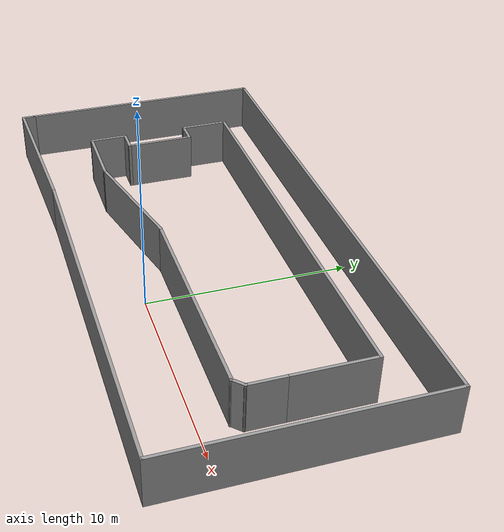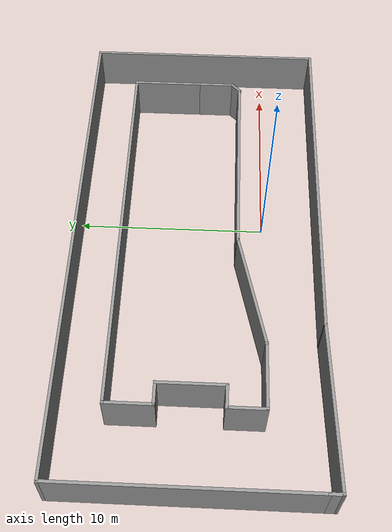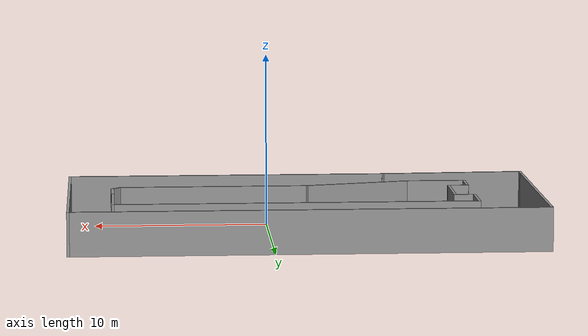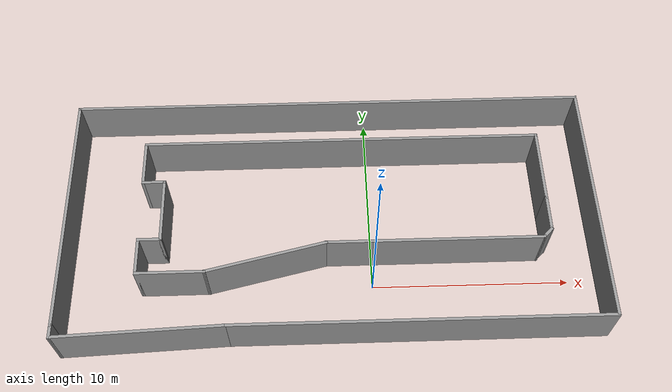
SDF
<?xml version='1.0'?>
<sdf version='1.7'>
  <model name='parking_map1'>
    <pose>-1.95765 3.36047 0 0 -0 0</pose>
    <link name='Wall_10'>
      <collision name='Wall_10_Collision'>
        <geometry>
          <box>
            <size>18.75 0.15 2.5</size>
          </box>
        </geometry>
        <pose>0 0 1.25 0 -0 0</pose>
      </collision>
      <visual name='Wall_10_Visual'>
        <pose>0 0 1.25 0 -0 0</pose>
        <geometry>
          <box>
            <size>18.75 0.15 2.5</size>
          </box>
        </geometry>
        <material>
          <script>
            <uri>file://media/materials/scripts/gazebo.material</uri>
            <name>Gazebo/Grey</name>
          </script>
          <ambient>1 1 1 1</ambient>
        </material>
        <meta>
          <layer>0</layer>
        </meta>
      </visual>
      <pose>4.12655 -6.24845 0 0 -0 0</pose>
    </link>
    <link name='Wall_11'>
      <collision name='Wall_11_Collision'>
        <geometry>
          <box>
            <size>13 0.15 2.5</size>
          </box>
        </geometry>
        <pose>0 0 1.25 0 -0 0</pose>
      </collision>
      <visual name='Wall_11_Visual'>
        <pose>0 0 1.25 0 -0 0</pose>
        <geometry>
          <box>
            <size>13 0.15 2.5</size>
          </box>
        </geometry>
        <material>
          <script>
            <uri>file://media/materials/scripts/gazebo.material</uri>
            <name>Gazebo/Grey</name>
          </script>
          <ambient>1 1 1 1</ambient>
        </material>
        <meta>
          <layer>0</layer>
        </meta>
      </visual>
      <pose>13.4266 0.176556 0 0 -0 1.5708</pose>
    </link>
    <link name='Wall_12'>
      <collision name='Wall_12_Collision'>
        <geometry>
          <box>
            <size>27 0.15 2.5</size>
          </box>
        </geometry>
        <pose>0 0 1.25 0 -0 0</pose>
      </collision>
      <visual name='Wall_12_Visual'>
        <pose>0 0 1.25 0 -0 0</pose>
        <geometry>
          <box>
            <size>27 0.15 2.5</size>
          </box>
        </geometry>
        <material>
          <script>
            <uri>file://media/materials/scripts/gazebo.material</uri>
            <name>Gazebo/Grey</name>
          </script>
          <ambient>1 1 1 1</ambient>
        </material>
        <meta>
          <layer>0</layer>
        </meta>
      </visual>
      <pose>0.001555 6.60156 0 0 -0 3.14159</pose>
    </link>
    <link name='Wall_13'>
      <collision name='Wall_13_Collision'>
        <geometry>
          <box>
            <size>12.75 0.15 2.5</size>
          </box>
        </geometry>
        <pose>0 0 1.25 0 -0 0</pose>
      </collision>
      <visual name='Wall_13_Visual'>
        <pose>0 0 1.25 0 -0 0</pose>
        <geometry>
          <box>
            <size>12.75 0.15 2.5</size>
          </box>
        </geometry>
        <material>
          <script>
            <uri>file://media/materials/scripts/gazebo.material</uri>
            <name>Gazebo/Grey</name>
          </script>
          <ambient>1 1 1 1</ambient>
        </material>
        <meta>
          <layer>0</layer>
        </meta>
      </visual>
      <pose>-13.4234 0.301556 0 0 -0 -1.5708</pose>
    </link>
    <link name='Wall_14'>
      <collision name='Wall_14_Collision'>
        <geometry>
          <box>
            <size>0.75 0.15 2.5</size>
          </box>
        </geometry>
        <pose>0 0 1.25 0 -0 0</pose>
      </collision>
      <visual name='Wall_14_Visual'>
        <pose>0 0 1.25 0 -0 0</pose>
        <geometry>
          <box>
            <size>0.75 0.15 2.5</size>
          </box>
        </geometry>
        <material>
          <script>
            <uri>file://media/materials/scripts/gazebo.material</uri>
            <name>Gazebo/Grey</name>
          </script>
          <ambient>1 1 1 1</ambient>
        </material>
        <meta>
          <layer>0</layer>
        </meta>
      </visual>
      <pose>-13.4234 -6.29845 0 0 -0 -1.5708</pose>
    </link>
    <link name='Wall_15'>
      <collision name='Wall_15_Collision'>
        <geometry>
          <box>
            <size>8.40742 0.15 2.5</size>
          </box>
        </geometry>
        <pose>0 0 1.25 0 -0 0</pose>
      </collision>
      <visual name='Wall_15_Visual'>
        <pose>0 0 1.25 0 -0 0</pose>
        <geometry>
          <box>
            <size>8.40742 0.15 2.5</size>
          </box>
        </geometry>
        <material>
          <script>
            <uri>file://media/materials/scripts/gazebo.material</uri>
            <name>Gazebo/Grey</name>
          </script>
          <ambient>1 1 1 1</ambient>
        </material>
        <meta>
          <layer>0</layer>
        </meta>
      </visual>
      <pose>-9.29844 -6.42345 0 0 -0 0.042399</pose>
    </link>
    <link name='Wall_19'>
      <collision name='Wall_19_Collision'>
        <geometry>
          <box>
            <size>11 0.15 2.5</size>
          </box>
        </geometry>
        <pose>0 0 1.25 0 -0 0</pose>
      </collision>
      <visual name='Wall_19_Visual'>
        <pose>0 0 1.25 0 -0 0</pose>
        <geometry>
          <box>
            <size>11 0.15 2.5</size>
          </box>
        </geometry>
        <material>
          <script>
            <uri>file://media/materials/scripts/gazebo.material</uri>
            <name>Gazebo/Grey</name>
          </script>
          <ambient>1 1 1 1</ambient>
        </material>
        <meta>
          <layer>0</layer>
        </meta>
      </visual>
      <pose>5.08301 -1.96622 0 0 -0 0</pose>
    </link>
    <link name='Wall_20'>
      <collision name='Wall_20_Collision'>
        <geometry>
          <box>
            <size>0.75 0.15 2.5</size>
          </box>
        </geometry>
        <pose>0 0 1.25 0 -0 0</pose>
      </collision>
      <visual name='Wall_20_Visual'>
        <pose>0 0 1.25 0 -0 0</pose>
        <geometry>
          <box>
            <size>0.75 0.15 2.5</size>
          </box>
        </geometry>
        <material>
          <script>
            <uri>file://media/materials/scripts/gazebo.material</uri>
            <name>Gazebo/Grey</name>
          </script>
          <ambient>1 1 1 1</ambient>
        </material>
        <meta>
          <layer>0</layer>
        </meta>
      </visual>
      <pose>10.7201 -1.75408 0 0 -0 0.785398</pose>
    </link>
    <link name='Wall_21'>
      <collision name='Wall_21_Collision'>
        <geometry>
          <box>
            <size>2 0.15 2.5</size>
          </box>
        </geometry>
        <pose>0 0 1.25 0 -0 0</pose>
      </collision>
      <visual name='Wall_21_Visual'>
        <pose>0 0 1.25 0 -0 0</pose>
        <geometry>
          <box>
            <size>2 0.15 2.5</size>
          </box>
        </geometry>
        <material>
          <script>
            <uri>file://media/materials/scripts/gazebo.material</uri>
            <name>Gazebo/Grey</name>
          </script>
          <ambient>1 1 1 1</ambient>
        </material>
        <meta>
          <layer>0</layer>
        </meta>
      </visual>
      <pose>10.9323 -0.616952 0 0 -0 1.5708</pose>
    </link>
    <link name='Wall_22'>
      <collision name='Wall_22_Collision'>
        <geometry>
          <box>
            <size>4 0.15 2.5</size>
          </box>
        </geometry>
        <pose>0 0 1.25 0 -0 0</pose>
      </collision>
      <visual name='Wall_22_Visual'>
        <pose>0 0 1.25 0 -0 0</pose>
        <geometry>
          <box>
            <size>4 0.15 2.5</size>
          </box>
        </geometry>
        <material>
          <script>
            <uri>file://media/materials/scripts/gazebo.material</uri>
            <name>Gazebo/Grey</name>
          </script>
          <ambient>1 1 1 1</ambient>
        </material>
        <meta>
          <layer>0</layer>
        </meta>
      </visual>
      <pose>10.9323 2.23305 0 0 -0 1.5708</pose>
    </link>
    <link name='Wall_23'>
      <collision name='Wall_23_Collision'>
        <geometry>
          <box>
            <size>20.75 0.15 2.5</size>
          </box>
        </geometry>
        <pose>0 0 1.25 0 -0 0</pose>
      </collision>
      <visual name='Wall_23_Visual'>
        <pose>0 0 1.25 0 -0 0</pose>
        <geometry>
          <box>
            <size>20.75 0.15 2.5</size>
          </box>
        </geometry>
        <material>
          <script>
            <uri>file://media/materials/scripts/gazebo.material</uri>
            <name>Gazebo/Grey</name>
          </script>
          <ambient>1 1 1 1</ambient>
        </material>
        <meta>
          <layer>0</layer>
        </meta>
      </visual>
      <pose>0.632276 4.15805 0 0 -0 3.14159</pose>
    </link>
    <link name='Wall_24'>
      <collision name='Wall_24_Collision'>
        <geometry>
          <box>
            <size>2.5 0.15 2.5</size>
          </box>
        </geometry>
        <pose>0 0 1.25 0 -0 0</pose>
      </collision>
      <visual name='Wall_24_Visual'>
        <pose>0 0 1.25 0 -0 0</pose>
        <geometry>
          <box>
            <size>2.5 0.15 2.5</size>
          </box>
        </geometry>
        <material>
          <script>
            <uri>file://media/materials/scripts/gazebo.material</uri>
            <name>Gazebo/Grey</name>
          </script>
          <ambient>1 1 1 1</ambient>
        </material>
        <meta>
          <layer>0</layer>
        </meta>
      </visual>
      <pose>-9.66773 2.98305 0 0 -0 -1.5708</pose>
    </link>
    <link name='Wall_25'>
      <collision name='Wall_25_Collision'>
        <geometry>
          <box>
            <size>1.25 0.15 2.5</size>
          </box>
        </geometry>
        <pose>0 0 1.25 0 -0 0</pose>
      </collision>
      <visual name='Wall_25_Visual'>
        <pose>0 0 1.25 0 -0 0</pose>
        <geometry>
          <box>
            <size>1.25 0.15 2.5</size>
          </box>
        </geometry>
        <material>
          <script>
            <uri>file://media/materials/scripts/gazebo.material</uri>
            <name>Gazebo/Grey</name>
          </script>
          <ambient>1 1 1 1</ambient>
        </material>
        <meta>
          <layer>0</layer>
        </meta>
      </visual>
      <pose>-9.11772 1.80805 0 0 -0 0</pose>
    </link>
    <link name='Wall_26'>
      <collision name='Wall_26_Collision'>
        <geometry>
          <box>
            <size>3.5 0.15 2.5</size>
          </box>
        </geometry>
        <pose>0 0 1.25 0 -0 0</pose>
      </collision>
      <visual name='Wall_26_Visual'>
        <pose>0 0 1.25 0 -0 0</pose>
        <geometry>
          <box>
            <size>3.5 0.15 2.5</size>
          </box>
        </geometry>
        <material>
          <script>
            <uri>file://media/materials/scripts/gazebo.material</uri>
            <name>Gazebo/Grey</name>
          </script>
          <ambient>1 1 1 1</ambient>
        </material>
        <meta>
          <layer>0</layer>
        </meta>
      </visual>
      <pose>-8.56772 0.133048 0 0 -0 -1.5708</pose>
    </link>
    <link name='Wall_27'>
      <collision name='Wall_27_Collision'>
        <geometry>
          <box>
            <size>1.25 0.15 2.5</size>
          </box>
        </geometry>
        <pose>0 0 1.25 0 -0 0</pose>
      </collision>
      <visual name='Wall_27_Visual'>
        <pose>0 0 1.25 0 -0 0</pose>
        <geometry>
          <box>
            <size>1.25 0.15 2.5</size>
          </box>
        </geometry>
        <material>
          <script>
            <uri>file://media/materials/scripts/gazebo.material</uri>
            <name>Gazebo/Grey</name>
          </script>
          <ambient>1 1 1 1</ambient>
        </material>
        <meta>
          <layer>0</layer>
        </meta>
      </visual>
      <pose>-9.11772 -1.54195 0 0 -0 3.14159</pose>
    </link>
    <link name='Wall_28'>
      <collision name='Wall_28_Collision'>
        <geometry>
          <box>
            <size>2 0.15 2.5</size>
          </box>
        </geometry>
        <pose>0 0 1.25 0 -0 0</pose>
      </collision>
      <visual name='Wall_28_Visual'>
        <pose>0 0 1.25 0 -0 0</pose>
        <geometry>
          <box>
            <size>2 0.15 2.5</size>
          </box>
        </geometry>
        <material>
          <script>
            <uri>file://media/materials/scripts/gazebo.material</uri>
            <name>Gazebo/Grey</name>
          </script>
          <ambient>1 1 1 1</ambient>
        </material>
        <meta>
          <layer>0</layer>
        </meta>
      </visual>
      <pose>-9.66773 -2.46695 0 0 -0 -1.5708</pose>
    </link>
    <link name='Wall_29'>
      <collision name='Wall_29_Collision'>
        <geometry>
          <box>
            <size>3.5 0.15 2.5</size>
          </box>
        </geometry>
        <pose>0 0 1.25 0 -0 0</pose>
      </collision>
      <visual name='Wall_29_Visual'>
        <pose>0 0 1.25 0 -0 0</pose>
        <geometry>
          <box>
            <size>3.5 0.15 2.5</size>
          </box>
        </geometry>
        <material>
          <script>
            <uri>file://media/materials/scripts/gazebo.material</uri>
            <name>Gazebo/Grey</name>
          </script>
          <ambient>1 1 1 1</ambient>
        </material>
        <meta>
          <layer>0</layer>
        </meta>
      </visual>
      <pose>-7.99272 -3.39195 0 0 -0 0</pose>
    </link>
    <link name='Wall_30'>
      <collision name='Wall_30_Collision'>
        <geometry>
          <box>
            <size>6.29346 0.15 2.5</size>
          </box>
        </geometry>
        <pose>0 0 1.25 0 -0 0</pose>
      </collision>
      <visual name='Wall_30_Visual'>
        <pose>0 0 1.25 0 -0 0</pose>
        <geometry>
          <box>
            <size>6.29346 0.15 2.5</size>
          </box>
        </geometry>
        <material>
          <script>
            <uri>file://media/materials/scripts/gazebo.material</uri>
            <name>Gazebo/Grey</name>
          </script>
          <ambient>1 1 1 1</ambient>
        </material>
        <meta>
          <layer>0</layer>
        </meta>
      </visual>
      <pose>-3.32986 -2.67908 0 0 -0 0.234209</pose>
    </link>
    <static>1</static>
  </model>
</sdf>
